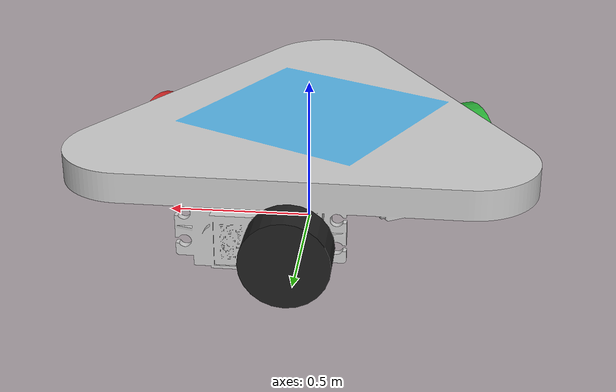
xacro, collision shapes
<?xml version="1.0" ?>

<robot name="hb_bot" xmlns:xacro="http://www.ros.org/wiki/xacro">
    <xacro:include filename="$(find hb_task_1b)/urdf/materials.xacro"/>

    <link name ="footprint_link">
    </link>
    <joint name="footprint_joint" type="fixed">
         <origin
                xyz="0.0 0.0 0.0"
                rpy="0 0 0" />
        <parent link="footprint_link"/>
        <child link="base_link"/>

    </joint>

    <!--Base link-->
    <link name ="base_link">
        <inertial>
            <origin xyz="0 0.0 0.28" rpy="0 0 0" />
            <mass
                value="0.28" />
            <inertia
                ixx="0.011666666666667"
                ixy="0"
                ixz="0"
                iyy="0.011666666666667"
                iyz="0"
                izz="0.011666666666667" />

        </inertial>
         <collision name="collision">
            <origin
                xyz="0 0.0 0.28"
                rpy="0 0 0" />

            <geometry>
                <mesh filename ="file://$(find hb_task_1b)/meshes/base.dae" scale="0.01  0.01 0.01"/>

            </geometry>
        </collision>
        <visual>
            <origin
                xyz="0 0 0.28"
                rpy="0 0 0" />
            <geometry>
                <mesh
                filename ="file://$(find hb_task_1b)/meshes/base.dae" scale="0.01  0.01 0.01"/>
            </geometry>
        </visual>
    </link>
<!-- lot more stuff needs to go here -->
    <link name ="right_wheel">

        <inertial>
            <origin
                xyz="0 -0.05 0.0"
                rpy="1.57 0 0" />
            <mass
                value="0.060" />
            <inertia
                ixx="1.825e-4"
                ixy="0"
                ixz="0.00000000"
                iyy="1.825e-4"
                iyz="0"
                izz="1.825e-4" />
        </inertial>
         <collision name="R_collision">
         <origin
                xyz="0 -0.05 0.0"
                rpy="1.57 0 0" />
          <geometry>
            <cylinder length="0.13" radius="0.14"/>
          </geometry>
        </collision>

        <visual>
            <origin
            xyz="0.0 0.0 0.0"
            rpy="0.0 0.0 0.0" />
            <geometry>
                <mesh filename ="file://$(find hb_task_1b)/meshes/wheel.stl" scale="5 5 5"/>
            </geometry>

        </visual>
    </link>
    <joint name ="right_wheel_joint" type="continuous" >
        <origin
                xyz="0.0 0.68 0.18"
                rpy="0 0 0" />
        <parent link="base_link"/>
        <child link="right_wheel"/>
        <axis xyz="0.0 1.0 0.0"/>
         <limit
            effort="5"
            velocity="5" />
    </joint>

    <link name ="left_wheel">

        <inertial>
            <origin
                xyz="0 -0.05 0.0"
                rpy="1.57 0 0" />
            <mass
                value="0.060" />
            <inertia
                ixx="1.825e-4"
                ixy="0"
                ixz="0.00000000"
                iyy="1.825e-4"
                iyz="0"
                izz="1.825e-4" />
        </inertial>
         <collision name="R_collision">
         <origin
                xyz="0 -0.05 0.0"
                rpy="1.57 0 0" />
          <geometry>
            <cylinder length="0.13" radius="0.14"/>
          </geometry>
        </collision>

        <visual>
            <origin
            xyz="0.0 0.0 0.0"
            rpy="0.0 0.0 0.0" />
            <geometry>
                <mesh filename ="file://$(find hb_task_1b)/meshes/wheel.stl" scale="5 5 5"/>
            </geometry>

        </visual>
    </link>
    <joint name ="left_wheel_joint" type="continuous" >
        <origin
                xyz="0.51 -0.322 0.16"
                rpy="0 0 1.04719" />
        <parent link="base_link"/>
        <child link="left_wheel"/>
        <axis xyz="0.0 1.0 0.0"/>
         <limit
            effort="5"
            velocity="5" />
    </joint>

    <link name ="top_wheel">

        <inertial>
            <origin
                xyz="0 -0.05 0.0"
                rpy="1.57 0 0" />
            <mass
                value="0.060" />
            <inertia
                ixx="1.825e-4"
                ixy="0"
                ixz="0.00000000"
                iyy="1.825e-4"
                iyz="0"
                izz="1.825e-4" />
        </inertial>
         <collision name="R_collision">
         <origin
                xyz="0 -0.05 0.0"
                rpy="1.57 0 0" />
          <geometry>
            <cylinder length="0.13" radius="0.14"/>
          </geometry>
        </collision>

        <visual>
            <origin
            xyz="0.0 0.0 0.0"
            rpy="0.0 0.0 0.0" />
            <geometry>
                <mesh filename ="file://$(find hb_task_1b)/meshes/wheel.stl" scale="5 5 5"/>
            </geometry>

        </visual>
    </link>
    <joint name ="top_wheel_joint" type="continuous" >
        <origin
                xyz="-0.57 -0.34 0.175"
                rpy="0 0 2.0943" />
        <parent link="base_link"/>
        <child link="top_wheel"/>
        <axis xyz="0.0 1.0 0.0"/>
         <limit
            effort="5"
            velocity="5" />
    </joint>

    <!-- material properties -->
    <gazebo reference="right_wheel">
        <material>Gazebo/Black</material>
    </gazebo>

    <gazebo reference="left_wheel">
        <material>Gazebo/Red</material>
    </gazebo>

    <gazebo reference="top_wheel">
        <material>Gazebo/Green</material>
    </gazebo>

  <gazebo>
    <plugin name="object_controller" filename="libgazebo_ros_planar_move.so">
      <commandTopic>cmd_vel</commandTopic>
      <odometryTopic>odom</odometryTopic>
      <odometryFrame>odom</odometryFrame>
      <odometryRate>20.0</odometryRate>
      <robotBaseFrame>chasis</robotBaseFrame>
    </plugin>
  </gazebo>
</robot>
